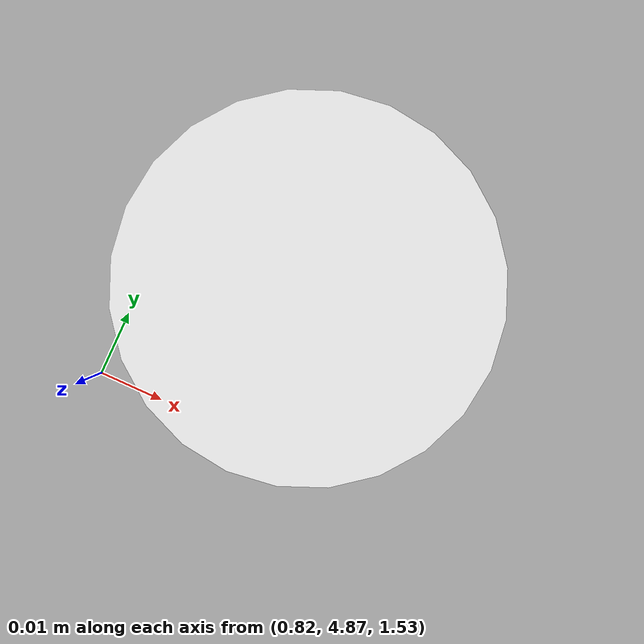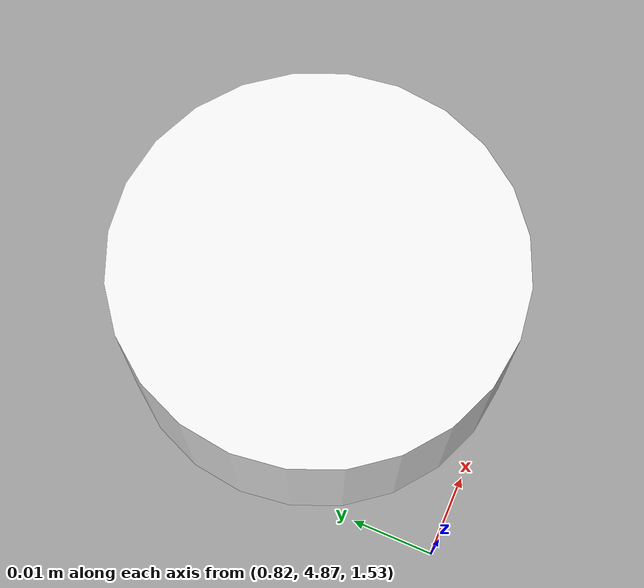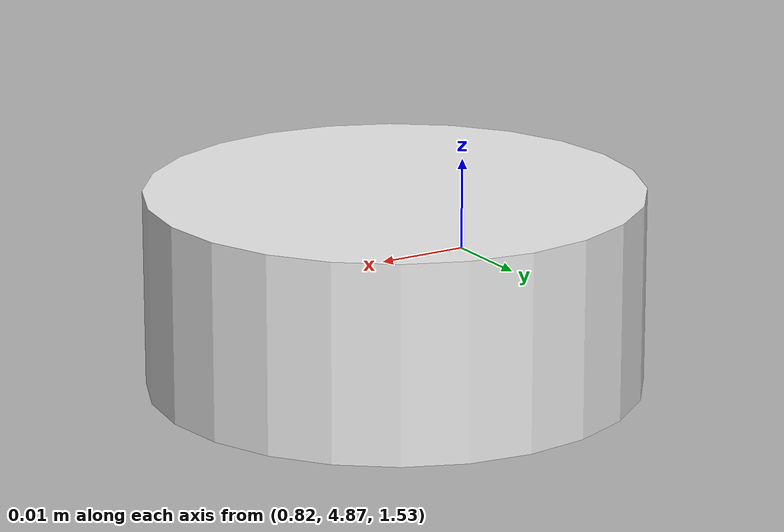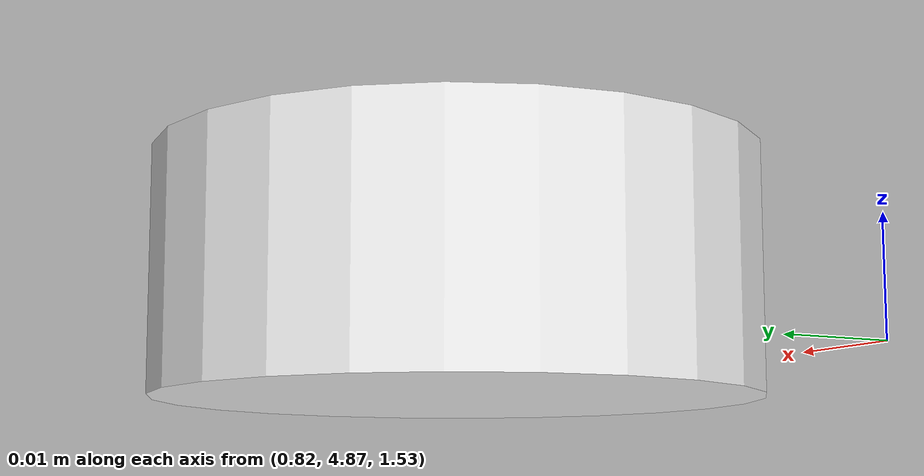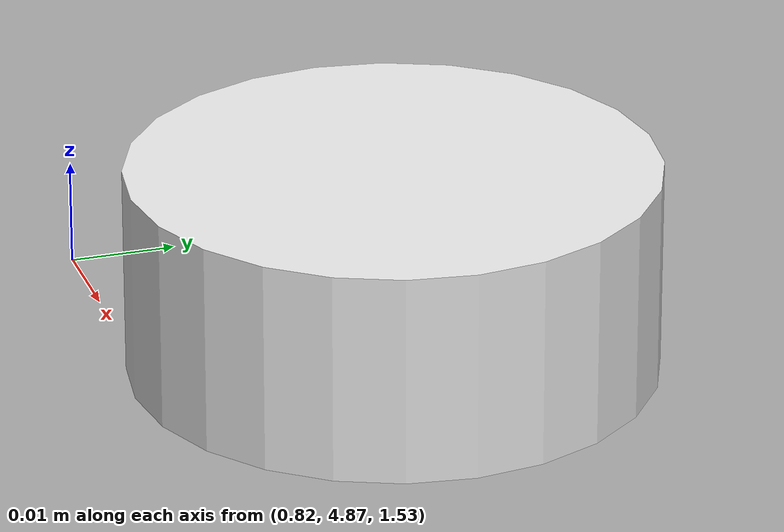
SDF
<?xml version='1.0'?>

<sdf version='1.4'>
  <model name="flower_population">
	<static>true</static>

        <link name="centre_0">
		  <pose>0.8435467688856609 4.894765390049024 1.5362440744913275 0 0 0</pose>
          <collision name="centre_collision_0">
            <geometry><sphere><radius>0.02</radius></sphere></geometry>
          </collision>
          <visual name="visual">
            <geometry><cylinder><radius>0.025</radius><length>0.02</length></cylinder></geometry>
            <material><script><name>Gazebo/White</name></script></material>
          </visual>
        <inertial>
          <pose>0 0 0 0 0 0</pose>
          <mass>0.0001</mass>
          <inertia>
            <ixx>1.6000000000000004e-08</ixx><ixy>0.0</ixy><ixz>0.0</ixz><iyy>1.6000000000000004e-08</iyy><iyz>0.0</iyz><izz>1.6000000000000004e-08</izz>
          </inertia>
        </inertial>
        <!-- Sensor for any contact with centre (stigma) of flower -->
		<sensor name='stigma_contact_0' type='contact'>
	      <plugin name="contact_plugin" filename="libcontact_plugin.so"/>
		  <contact>
			<collision>centre_collision_0</collision>
			<topic>stigma_contact_topic_0</topic>
		  </contact>
		</sensor>
        </link>

  </model>
</sdf>
